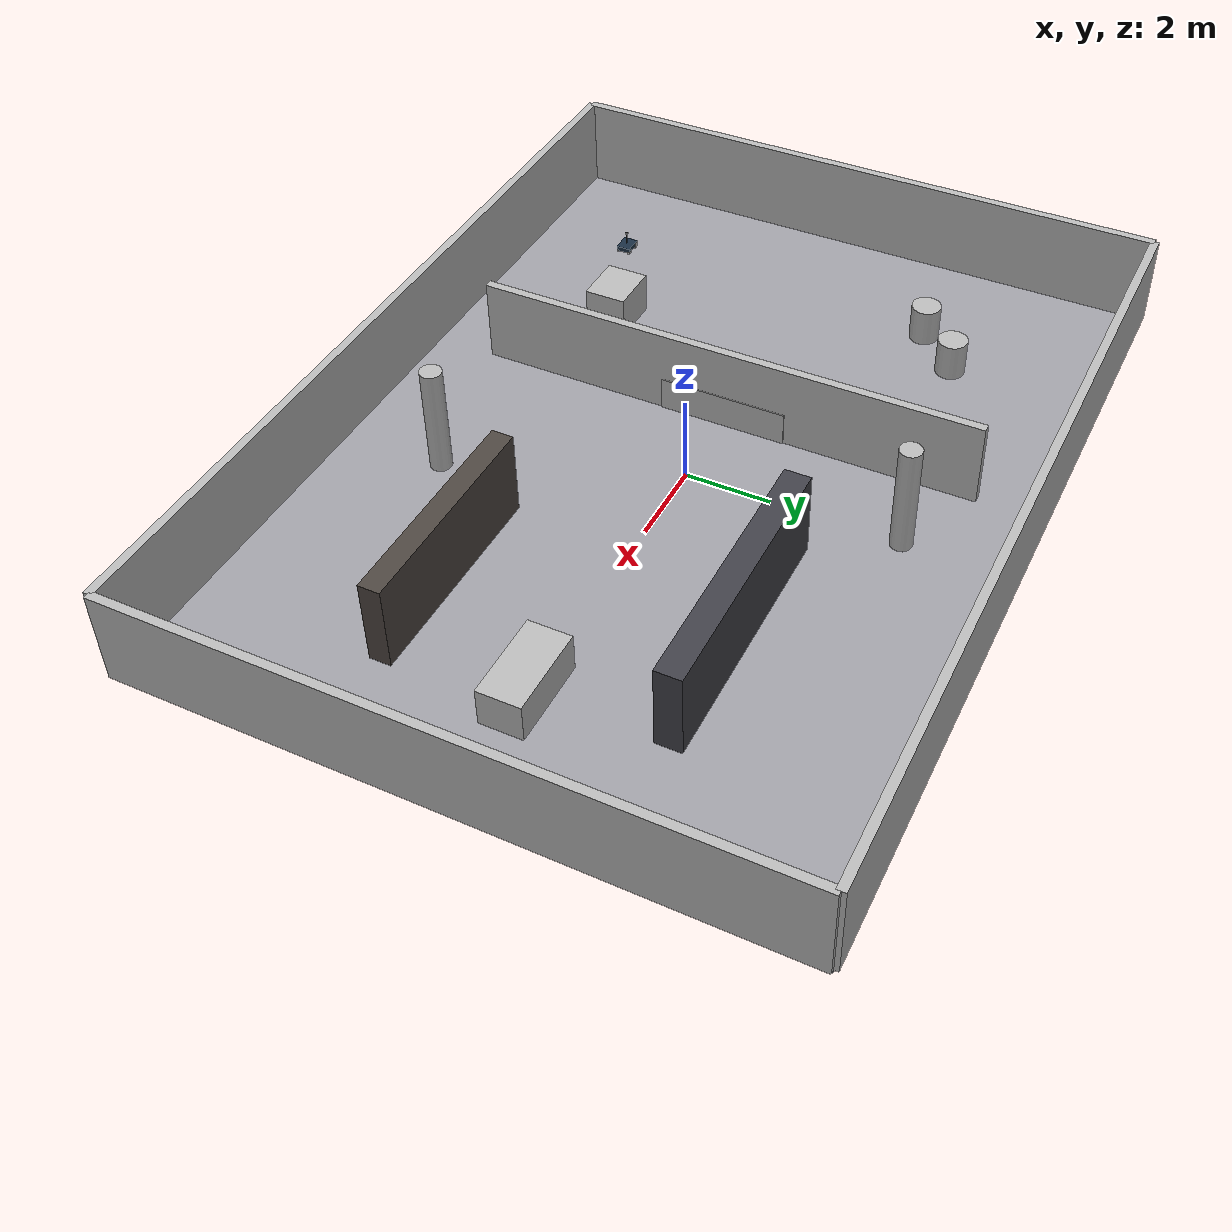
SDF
<?xml version="1.0"?>
<sdf version="1.9">
  <world name="factory_world">

    <plugin filename="libignition-gazebo-sensors-system.so"
            name="ignition::gazebo::systems::Sensors">
      <render_engine>ogre2</render_engine>
    </plugin>

    <physics name="fast_physics" type="ignored">
      <max_step_size>0.001</max_step_size>
      <real_time_factor>1.0</real_time_factor>
    </physics>

    <light name="sun" type="directional">
      <cast_shadows>true</cast_shadows>
      <pose>-2 2 8 0.3 -0.4 0</pose>
      <diffuse>1 1 1 1</diffuse>
      <specular>0.1 0.1 0.1 1</specular>
      <direction>0.5 0.1 -1</direction>
    </light>

    <!-- Пол с неск. зонами покрытия -->
    <model name="floor">
      <static>true</static>
      <link name="floor_link">
        <pose>0 0 -0.05 0 0 0</pose>
        <collision name="collision">
          <geometry><box><size>20 15 0.1</size></box></geometry>
        </collision>
        <visual name="visual_main">
          <geometry><box><size>20 15 0.1</size></box></geometry>
          <material>
            <ambient>0.6 0.6 0.62 1</ambient>
            <diffuse>0.62 0.62 0.65 1</diffuse>
          </material>
        </visual>
      </link>
    </model>

    <!-- Периметр -->
    <model name="north_wall">
      <static>true</static>
      <link name="link">
        <pose>0 7.5 1.1 0 0 0</pose>
        <collision name="col"><geometry><box><size>20 0.2 2.2</size></box></geometry></collision>
        <visual name="vis"><geometry><box><size>20 0.2 2.2</size></box></geometry></visual>
      </link>
    </model>
    <model name="south_wall">
      <static>true</static>
      <link name="link">
        <pose>0 -7.5 1.1 0 0 0</pose>
        <collision name="col"><geometry><box><size>20 0.2 2.2</size></box></geometry></collision>
        <visual name="vis"><geometry><box><size>20 0.2 2.2</size></box></geometry></visual>
      </link>
    </model>
    <model name="east_wall">
      <static>true</static>
      <link name="link">
        <pose>10 0 1.1 0 0 0</pose>
        <collision name="col"><geometry><box><size>0.2 15 2.2</size></box></geometry></collision>
        <visual name="vis"><geometry><box><size>0.2 15 2.2</size></box></geometry></visual>
      </link>
    </model>
    <model name="west_wall">
      <static>true</static>
      <link name="link">
        <pose>-10 0 1.1 0 0 0</pose>
        <collision name="col"><geometry><box><size>0.2 15 2.2</size></box></geometry></collision>
        <visual name="vis"><geometry><box><size>0.2 15 2.2</size></box></geometry></visual>
      </link>
    </model>

    <!-- Внутренняя перегородка с проемами -->
    <model name="divider">
      <static>true</static>
      <link name="link">
        <pose>-2 0 1 0 0 0</pose>
        <collision name="col"><geometry><box><size>0.2 12 2</size></box></geometry></collision>
        <visual name="vis"><geometry><box><size>0.2 12 2</size></box></geometry></visual>
      </link>
    </model>
    <model name="divider_gap">
      <static>true</static>
      <link name="link">
        <pose>-2 0 0.4 0 0 0</pose>
        <collision name="col"><geometry><box><size>0.25 3 0.8</size></box></geometry></collision>
        <visual name="vis"><geometry><box><size>0.25 3 0.8</size></box></geometry></visual>
      </link>
    </model>

    <!-- Оборудование / препятствия -->
    <model name="shelf_row">
      <static>true</static>
      <link name="link">
        <pose>4 3 1 0 0 0</pose>
        <collision name="col"><geometry><box><size>6 0.6 2</size></box></geometry></collision>
        <visual name="vis">
          <geometry><box><size>6 0.6 2</size></box></geometry>
          <material><ambient>0.2 0.2 0.22 1</ambient><diffuse>0.25 0.25 0.28 1</diffuse></material>
        </visual>
      </link>
    </model>

    <model name="shelf_row_2">
      <static>true</static>
      <link name="link">
        <pose>5 -3 1 0 0 0</pose>
        <collision name="col"><geometry><box><size>5 0.5 2</size></box></geometry></collision>
        <visual name="vis">
          <geometry><box><size>5 0.5 2</size></box></geometry>
          <material><ambient>0.25 0.23 0.22 1</ambient><diffuse>0.3 0.27 0.25 1</diffuse></material>
        </visual>
      </link>
    </model>

    <model name="barrel_cluster_1">
      <static>true</static>
      <link name="b1"><pose>-6 4 0.45 0 0 0</pose>
        <collision name="col"><geometry><cylinder><radius>0.35</radius><length>0.9</length></cylinder></geometry></collision>
        <visual name="vis"><geometry><cylinder><radius>0.35</radius><length>0.9</length></cylinder></geometry></visual>
      </link>
    </model>
    <model name="barrel_cluster_2">
      <static>true</static>
      <link name="b2"><pose>-7 3 0.45 0 0 0</pose>
        <collision name="col"><geometry><cylinder><radius>0.35</radius><length>0.9</length></cylinder></geometry></collision>
        <visual name="vis"><geometry><cylinder><radius>0.35</radius><length>0.9</length></cylinder></geometry></visual>
      </link>
    </model>

    <model name="pallet_stack">
      <static>true</static>
      <link name="link">
        <pose>-4.5 -4 0.5 0 0 0</pose>
        <collision name="col"><geometry><box><size>1.2 1.0 1.0</size></box></geometry></collision>
        <visual name="vis"><geometry><box><size>1.2 1.0 1.0</size></box></geometry></visual>
      </link>
    </model>

    <model name="pillar_1">
      <static>true</static>
      <link name="link">
        <pose>0 5 1.3 0 0 0</pose>
        <collision name="col"><geometry><cylinder><radius>0.25</radius><length>2.6</length></cylinder></geometry></collision>
        <visual name="vis"><geometry><cylinder><radius>0.25</radius><length>2.6</length></cylinder></geometry></visual>
      </link>
    </model>
    <model name="pillar_2">
      <static>true</static>
      <link name="link">
        <pose>2 -5 1.3 0 0 0</pose>
        <collision name="col"><geometry><cylinder><radius>0.25</radius><length>2.6</length></cylinder></geometry></collision>
        <visual name="vis"><geometry><cylinder><radius>0.25</radius><length>2.6</length></cylinder></geometry></visual>
      </link>
    </model>

    <model name="workbench">
      <static>true</static>
      <link name="link">
        <pose>7 0 0.45 0 0 0</pose>
        <collision name="col"><geometry><box><size>2.0 1.0 0.9</size></box></geometry></collision>
        <visual name="vis"><geometry><box><size>2.0 1.0 0.9</size></box></geometry></visual>
      </link>
    </model>

    <!-- Робот -->
    <include name="diff_robot">
      <uri>model://diff_robot</uri>
      <pose>-7 -5 0.15 0 0 0</pose>
    </include>
  </world>
</sdf>

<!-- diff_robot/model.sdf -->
<sdf version="1.9">
  <model name="diff_robot">
    <static>false</static>
    <pose>0 0 0 0 0 0</pose>

    <!-- ================== КОРПУС ================== -->
    <link name="base_link">
      <pose>0 0 0.12 0 0 0</pose>
      <inertial>
        <mass>12.0</mass>
        <inertia>
          <ixx>0.18</ixx><ixy>0</ixy><ixz>0</ixz>
          <iyy>0.24</iyy><iyz>0</iyz>
          <izz>0.30</izz>
        </inertia>
      </inertial>
      <visual name="base_vis">
        <geometry>
          <box><size>0.45 0.35 0.12</size></box>
        </geometry>
        <material>
          <ambient>0.08 0.12 0.18 1</ambient>
          <diffuse>0.10 0.18 0.26 1</diffuse>
        </material>
      </visual>
      <collision name="base_col">
        <geometry>
          <box><size>0.45 0.35 0.12</size></box>
        </geometry>
      </collision>
    </link>

    <!-- ================== КОЛЁСА ================== -->
    <link name="wheel_fl">
      <pose>0.16 0.15 0.07 1.57079632679 0 0</pose>
      <inertial>
        <mass>0.6</mass>
        <inertia>
          <ixx>0.0012</ixx><ixy>0</ixy><ixz>0</ixz>
          <iyy>0.0006</iyy><iyz>0</iyz>
          <izz>0.0012</izz>
        </inertia>
      </inertial>
      <visual name="vis">
        <geometry>
          <cylinder><radius>0.07</radius><length>0.05</length></cylinder>
        </geometry>
      </visual>
      <collision name="col">
        <geometry>
          <cylinder><radius>0.07</radius><length>0.05</length></cylinder>
        </geometry>
      </collision>
    </link>
    <joint name="wheel_fl_joint" type="revolute">
      <parent>base_link</parent>
      <child>wheel_fl</child>
      <axis>
        <xyz expressed_in="wheel_fl">0 0 1</xyz>
        <limit><lower>-1e16</lower><upper>1e16</upper></limit>
      </axis>
    </joint>

    <link name="wheel_fr">
      <pose>0.16 -0.15 0.07 1.57079632679 0 0</pose>
      <inertial>
        <mass>0.6</mass>
        <inertia>
          <ixx>0.0012</ixx><ixy>0</ixy><ixz>0</ixz>
          <iyy>0.0006</iyy><iyz>0</iyz>
          <izz>0.0012</izz>
        </inertia>
      </inertial>
      <visual name="vis">
        <geometry>
          <cylinder><radius>0.07</radius><length>0.05</length></cylinder>
        </geometry>
      </visual>
      <collision name="col">
        <geometry>
          <cylinder><radius>0.07</radius><length>0.05</length></cylinder>
        </geometry>
      </collision>
    </link>
    <joint name="wheel_fr_joint" type="revolute">
      <parent>base_link</parent>
      <child>wheel_fr</child>
      <axis>
        <xyz expressed_in="wheel_fr">0 0 1</xyz>
        <limit><lower>-1e16</lower><upper>1e16</upper></limit>
      </axis>
    </joint>

    <link name="wheel_rl">
      <pose>-0.16 0.15 0.07 1.57079632679 0 0</pose>
      <inertial>
        <mass>0.6</mass>
        <inertia>
          <ixx>0.0012</ixx><ixy>0</ixy><ixz>0</ixz>
          <iyy>0.0006</iyy><iyz>0</iyz>
          <izz>0.0012</izz>
        </inertia>
      </inertial>
      <visual name="vis">
        <geometry>
          <cylinder><radius>0.07</radius><length>0.05</length></cylinder>
        </geometry>
      </visual>
      <collision name="col">
        <geometry>
          <cylinder><radius>0.07</radius><length>0.05</length></cylinder>
        </geometry>
      </collision>
    </link>
    <joint name="wheel_rl_joint" type="revolute">
      <parent>base_link</parent>
      <child>wheel_rl</child>
      <axis>
        <xyz expressed_in="wheel_rl">0 0 1</xyz>
        <limit><lower>-1e16</lower><upper>1e16</upper></limit>
      </axis>
    </joint>

    <link name="wheel_rr">
      <pose>-0.16 -0.15 0.07 1.57079632679 0 0</pose>
      <inertial>
        <mass>0.6</mass>
        <inertia>
          <ixx>0.0012</ixx><ixy>0</ixy><ixz>0</ixz>
          <iyy>0.0006</iyy><iyz>0</iyz>
          <izz>0.0012</izz>
        </inertia>
      </inertial>
      <visual name="vis">
        <geometry>
          <cylinder><radius>0.07</radius><length>0.05</length></cylinder>
        </geometry>
      </visual>
      <collision name="col">
        <geometry>
          <cylinder><radius>0.07</radius><length>0.05</length></cylinder>
        </geometry>
      </collision>
    </link>
    <joint name="wheel_rr_joint" type="revolute">
      <parent>base_link</parent>
      <child>wheel_rr</child>
      <axis>
        <xyz expressed_in="wheel_rr">0 0 1</xyz>
        <limit><lower>-1e16</lower><upper>1e16</upper></limit>
      </axis>
    </joint>

    <!-- ================== СЕНСОРНАЯ МАЧТА ================== -->
    <link name="mast_link">
      <pose>0 0 0.30 0 0 0</pose>
      <inertial>
        <mass>0.08</mass>
        <inertia>
          <ixx>0.0004</ixx><ixy>0</ixy><ixz>0</ixz>
          <iyy>0.0004</iyy><iyz>0</iyz>
          <izz>0.0004</izz>
        </inertia>
      </inertial>
      <visual name="mast_vis">
        <geometry>
          <cylinder><radius>0.01</radius><length>0.36</length></cylinder>
        </geometry>
        <material>
          <ambient>0.18 0.18 0.18 1</ambient>
          <diffuse>0.22 0.22 0.22 1</diffuse>
        </material>
      </visual>
      <collision name="mast_col">
        <geometry>
          <cylinder><radius>0.01</radius><length>0.36</length></cylinder>
        </geometry>
      </collision>
    </link>
    <joint name="mast_fixed" type="fixed">
      <parent>base_link</parent>
      <child>mast_link</child>
    </joint>

    <!-- RGB-D камера на верхушке мачты -->
    <link name="camera_link">
      <pose>0 0 0.48 0 0 0</pose>
      <inertial>
        <mass>0.12</mass>
        <inertia>
          <ixx>0.0008</ixx><ixy>0</ixy><ixz>0</ixz>
          <iyy>0.0008</iyy><iyz>0</iyz>
          <izz>0.0008</izz>
        </inertia>
      </inertial>

      <sensor name="rgbd_camera" type="rgbd_camera">
        <pose>0 0 0 0 -1.57079632679 0</pose>
        <always_on>true</always_on>
        <update_rate>15</update_rate>
        <visualize>true</visualize>

        <topic>/camera/color/image</topic>
        <depth_topic>/camera/depth/image</depth_topic>
        <point_cloud_topic>/camera/depth/points</point_cloud_topic>
        <camera_info_topic>/camera/color/camera_info</camera_info_topic>
        <frame_id>camera_link</frame_id>

        <camera>
          <horizontal_fov>1.047</horizontal_fov>
          <image>
            <width>640</width>
            <height>480</height>
            <format>R8G8B8</format>
          </image>
          <clip>
            <near>0.05</near>
            <far>25</far>
          </clip>
        </camera>
      </sensor>

      <visual name="cam_body">
        <geometry>
          <box><size>0.06 0.06 0.04</size></box>
        </geometry>
        <material>
          <ambient>0.08 0.08 0.08 1</ambient>
          <diffuse>0.10 0.10 0.10 1</diffuse>
        </material>
      </visual>
      <collision name="cam_col">
        <geometry>
          <box><size>0.06 0.06 0.04</size></box>
        </geometry>
      </collision>
    </link>
    <joint name="camera_fixed" type="fixed">
      <parent>mast_link</parent>
      <child>camera_link</child>
    </joint>

    <!-- Лидар 2D (GPU Lidar для Harmonic) -->
    <link name="lidar_link">
      <pose>0.18 0 0.34 0 0 0</pose>
      <inertial>
        <mass>0.10</mass>
        <inertia>
          <ixx>0.0002</ixx><ixy>0</ixy><ixz>0</ixz>
          <iyy>0.0002</iyy><iyz>0</iyz>
          <izz>0.0002</izz>
        </inertia>
      </inertial>

      <sensor name="lidar" type="gpu_lidar">
        <pose>0 0 0 0 0 0</pose>
        <always_on>true</always_on>
        <update_rate>15</update_rate>
        <visualize>true</visualize>

        <topic>/scan</topic>
        <frame_id>lidar_link</frame_id>

        <lidar>
          <scan>
            <horizontal>
              <samples>720</samples>
              <resolution>1</resolution>
              <min_angle>-3.14159</min_angle>
              <max_angle>3.14159</max_angle>
            </horizontal>
          </scan>
          <range>
            <min>0.18</min>
            <max>18.0</max>
          </range>
        </lidar>
      </sensor>
    </link>
    <joint name="lidar_joint" type="fixed">
      <parent>base_link</parent>
      <child>lidar_link</child>
    </joint>

    <!-- IMU -->
    <link name="imu_link">
      <pose>0 0 0.20 0 0 0</pose>
      <inertial>
        <mass>0.05</mass>
        <inertia>
          <ixx>0.0001</ixx><ixy>0</ixy><ixz>0</ixz>
          <iyy>0.0001</iyy><iyz>0</iyz>
          <izz>0.0001</izz>
        </inertia>
      </inertial>
      <sensor name="imu" type="imu">
        <always_on>true</always_on>
        <update_rate>100</update_rate>
        <topic>/imu</topic>
        <frame_id>imu_link</frame_id>
      </sensor>
    </link>
    <joint name="imu_fixed" type="fixed">
      <parent>base_link</parent>
      <child>imu_link</child>
    </joint>

    <!-- Plugin: диф. привод -->
    <plugin name="gz::sim::systems::DiffDrive" filename="gz-sim-diff-drive-system">
      <left_joint>wheel_fl_joint</left_joint>
      <left_joint>wheel_rl_joint</left_joint>
      <right_joint>wheel_fr_joint</right_joint>
      <right_joint>wheel_rr_joint</right_joint>
      <wheel_separation>0.30</wheel_separation>
      <wheel_radius>0.07</wheel_radius>
      <topic>/cmd_vel</topic>
      <odom_topic>/odom</odom_topic>
      <frame_id>odom</frame_id>
      <child_frame_id>base_footprint</child_frame_id>
      <publish_odom>true</publish_odom>
    </plugin>

  </model>
</sdf>
